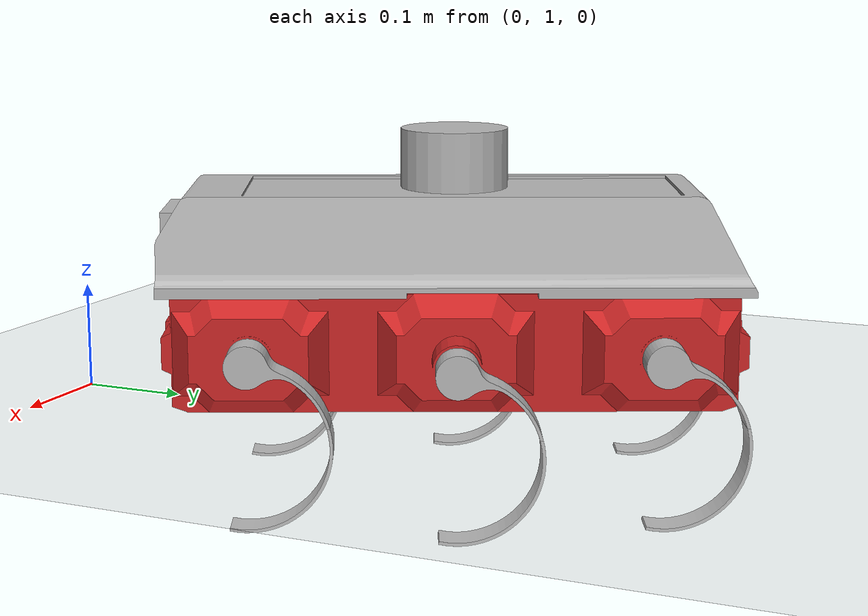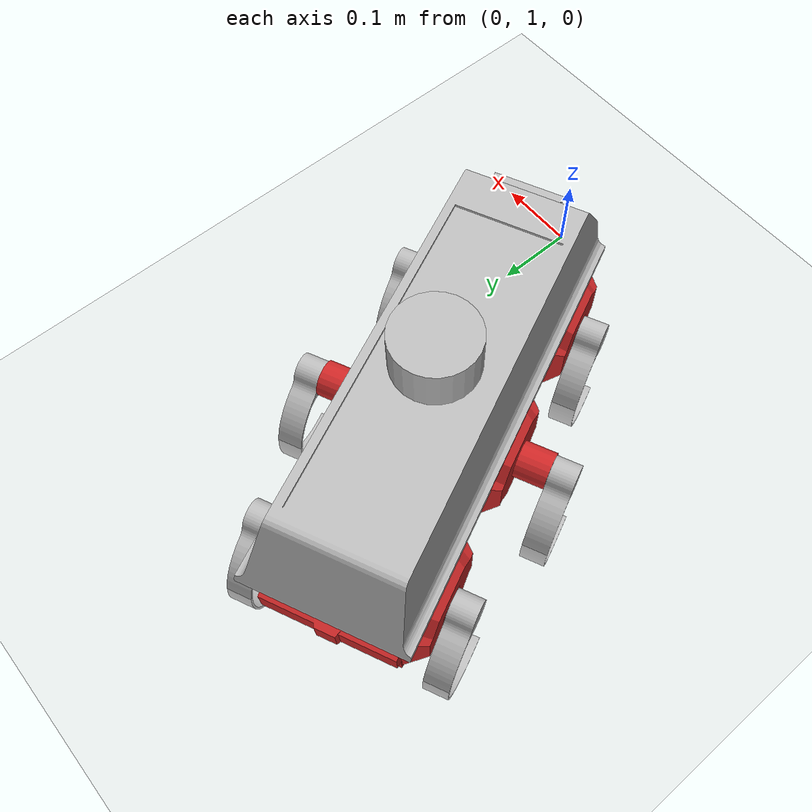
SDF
<sdf version="1.7">
 <world name="default">
  <model name="ground_plane">
   <static>1</static>
   <link name="link">
    <collision name="collision">
     <geometry><plane><normal>0 0 1</normal><size>100 100</size></plane></geometry>
     <surface>
      <contact><collide_bitmask>65535</collide_bitmask></contact>
      <friction><ode><mu>100</mu><mu2>50</mu2></ode></friction>
     </surface>
    </collision>
    <visual name="visual">
     <cast_shadows>0</cast_shadows>
     <geometry><plane><normal>0 0 1</normal><size>100 100</size></plane></geometry>
     <material>
      <script><uri>file://media/materials/scripts/gazebo.material</uri><name>Gazebo/Grey</name></script>
     </material>
    </visual>
   </link>
  </model>
  <model name="rhex">
   <link name="base_link">
    <inertial>
     <pose>0.000443 8e-06 0.00189 0 -0 0</pose>
     <mass>12.646</mass>
     <inertia>
      <ixx>0.0587881</ixx>
      <ixy>-2.79884e-05</ixy>
      <ixz>-0.000629803</ixz>
      <iyy>0.338307</iyy>
      <iyz>-1.20641e-05</iyz>
      <izz>0.36304</izz>
     </inertia>
    </inertial>
    <collision name="base_link_collision">
     <geometry>
      <mesh>
       <scale>1 1 1</scale>
       <uri>file:///home/rhex/mnt/rhex_ws/install/rhex_description/share/rhex_description/meshes/rpk10_chassis.dae</uri>
      </mesh>
     </geometry>
    </collision>
    <collision name="base_link_fixed_joint_lump__upper_case_link_collision_1">
     <pose>0 0 0.055 0 -0 0</pose>
     <geometry>
      <mesh>
       <scale>0.001 0.001 0.001</scale>
       <uri>file:///home/rhex/mnt/rhex_ws/install/rhex_description/share/rhex_description/meshes/upper_case.dae</uri>
      </mesh>
     </geometry>
    </collision>
    <collision name="base_link_fixed_joint_lump__camera_link_collision_2">
     <pose>0.267 0.0055 0.1155 0 -0 0</pose>
     <geometry><box><size>0.015 0.0867 0.022</size></box></geometry>
    </collision>
    <collision name="base_link_fixed_joint_lump__imu_link_collision_3">
     <pose>0.267 -0.005 0.0885 0 -0 0</pose>
     <geometry><box><size>0.015 0.115 0.02</size></box></geometry>
    </collision>
    <collision name="base_link_fixed_joint_lump__lidar_link_collision_4">
     <pose>0 0 0.172 0 -0 0</pose>
     <geometry><cylinder><length>0.056</length><radius>0.0508</radius></cylinder></geometry>
    </collision>
    <visual name="base_link_visual">
     <geometry>
      <mesh>
       <scale>1 1 1</scale>
       <uri>file:///home/rhex/mnt/rhex_ws/install/rhex_description/share/rhex_description/meshes/rpk10_chassis.dae</uri>
      </mesh>
     </geometry>
     <material>
      <script><name>Gazebo/Red</name><uri>file://media/materials/scripts/gazebo.material</uri></script>
     </material>
    </visual>
    <visual name="base_link_fixed_joint_lump__upper_case_link_visual_1">
     <pose>0 0 0.055 0 -0 0</pose>
     <geometry>
      <mesh>
       <scale>0.001 0.001 0.001</scale>
       <uri>file:///home/rhex/mnt/rhex_ws/install/rhex_description/share/rhex_description/meshes/upper_case.dae</uri>
      </mesh>
     </geometry>
    </visual>
    <visual name="base_link_fixed_joint_lump__camera_link_visual_2">
     <pose>0.267 0.0055 0.1155 0 -0 0</pose>
     <geometry><box><size>0.015 0.0867 0.022</size></box></geometry>
    </visual>
    <visual name="base_link_fixed_joint_lump__imu_link_visual_3">
     <pose>0.267 -0.005 0.0885 0 -0 0</pose>
     <geometry><box><size>0.015 0.115 0.02</size></box></geometry>
    </visual>
    <visual name="base_link_fixed_joint_lump__lidar_link_visual_4">
     <pose>0 0 0.172 0 -0 0</pose>
     <geometry><cylinder><length>0.056</length><radius>0.0508</radius></cylinder></geometry>
    </visual>
    <sensor name="depth_camera" type="depth">
     <visualize>1</visualize>
     <update_rate>30</update_rate>
     <camera name="camera">
      <horizontal_fov>1.0472</horizontal_fov>
      <image><width>640</width><height>480</height><format>B8G8R8</format></image>
      <clip><near>0.05</near><far>30</far></clip>
      <noise><type>gaussian</type><mean>0</mean><stddev>0.007</stddev></noise>
     </camera>
     <plugin name="depth_camera_controller" filename="libgazebo_ros_camera.so">
      <update_rate>0.0</update_rate>
      <frame_name>camera_depth_frame</frame_name>
      <min_depth>0.2</min_depth>
      <max_depth>4.0</max_depth>
     </plugin>
     <pose>0.267 0.0055 0.1155 0 -0 0</pose>
    </sensor>
    <sensor name="imu_sensor" type="imu">
     <plugin name="imu_plugin" filename="libgazebo_ros_imu_sensor.so">
      <ros><namespace>/imu</namespace><remapping>~/out:=data</remapping></ros>
      <initial_orientation_as_reference>0</initial_orientation_as_reference>
     </plugin>
     <always_on>1</always_on>
     <update_rate>1000</update_rate>
     <visualize>1</visualize>
     <imu>
      <angular_velocity>
       <x>
        <noise type="gaussian">
         <mean>0</mean>
         <stddev>0.0002</stddev>
         <bias_mean>7.5e-06</bias_mean>
         <bias_stddev>8e-07</bias_stddev>
        </noise>
       </x>
       <y>
        <noise type="gaussian">
         <mean>0</mean>
         <stddev>0.0002</stddev>
         <bias_mean>7.5e-06</bias_mean>
         <bias_stddev>8e-07</bias_stddev>
        </noise>
       </y>
       <z>
        <noise type="gaussian">
         <mean>0</mean>
         <stddev>0.0002</stddev>
         <bias_mean>7.5e-06</bias_mean>
         <bias_stddev>8e-07</bias_stddev>
        </noise>
       </z>
      </angular_velocity>
      <linear_acceleration>
       <x>
        <noise type="gaussian">
         <mean>0</mean>
         <stddev>0.017</stddev>
         <bias_mean>0.1</bias_mean>
         <bias_stddev>0.001</bias_stddev>
        </noise>
       </x>
       <y>
        <noise type="gaussian">
         <mean>0</mean>
         <stddev>0.017</stddev>
         <bias_mean>0.1</bias_mean>
         <bias_stddev>0.001</bias_stddev>
        </noise>
       </y>
       <z>
        <noise type="gaussian">
         <mean>0</mean>
         <stddev>0.017</stddev>
         <bias_mean>0.1</bias_mean>
         <bias_stddev>0.001</bias_stddev>
        </noise>
       </z>
      </linear_acceleration>
     </imu>
     <pose>0.267 -0.005 0.0885 0 -0 0</pose>
    </sensor>
    <sensor name="lidar" type="ray">
     <always_on>1</always_on>
     <visualize>0</visualize>
     <update_rate>5</update_rate>
     <ray>
      <scan>
       <horizontal>
        <samples>360</samples>
        <resolution>1</resolution>
        <min_angle>0</min_angle>
        <max_angle>6.28</max_angle>
       </horizontal>
       <vertical><samples>1</samples><min_angle>0</min_angle><max_angle>0</max_angle></vertical>
      </scan>
      <range><min>0.12</min><max>3.5</max><resolution>0.015</resolution></range>
      <noise><type>gaussian</type><mean>0</mean><stddev>0.01</stddev></noise>
     </ray>
     <plugin name="scan" filename="libgazebo_ros_ray_sensor.so">
      <ros><remapping>~/out:=scan</remapping></ros>
      <output_type>sensor_msgs/LaserScan</output_type>
      <frame_name>lidar_link</frame_name>
     </plugin>
     <pose>0 0 0.172 0 -0 0</pose>
    </sensor>
   </link>
   <joint name="front_left_joint" type="revolute">
    <pose relative_to="base_link">0.19 0.1235 0 0 -0 0</pose>
    <parent>base_link</parent>
    <child>front_left_link</child>
    <axis>
     <xyz>0 1 0</xyz>
     <limit><lower>-1e+16</lower><upper>1e+16</upper></limit>
     <dynamics>
      <damping>0.5</damping>
      <friction>0</friction>
      <spring_reference>0</spring_reference>
      <spring_stiffness>0</spring_stiffness>
     </dynamics>
    </axis>
   </joint>
   <link name="front_left_link">
    <pose relative_to="front_left_joint">0 0 0 0 -0 0</pose>
    <inertial>
     <pose>0 0 -0.08 0 -0 0</pose>
     <mass>0.05</mass>
     <inertia>
      <ixx>0.000130865</ixx>
      <ixy>0</ixy>
      <ixz>0</ixz>
      <iyy>0.000166666</iyy>
      <iyz>0</iyz>
      <izz>4.40694e-05</izz>
     </inertia>
    </inertial>
    <collision name="front_left_link_collision">
     <geometry>
      <mesh>
       <scale>1 1 1</scale>
       <uri>file:///home/rhex/mnt/rhex_ws/install/rhex_description/share/rhex_description/meshes/rpk10_leg.dae</uri>
      </mesh>
     </geometry>
     <surface>
      <contact><ode><kp>1e+12</kp><kd>100</kd><min_depth>0.05</min_depth></ode></contact>
      <friction><ode><mu>50</mu><mu2>50</mu2></ode></friction>
     </surface>
    </collision>
    <visual name="front_left_link_visual">
     <geometry>
      <mesh>
       <scale>1 1 1</scale>
       <uri>file:///home/rhex/mnt/rhex_ws/install/rhex_description/share/rhex_description/meshes/rpk10_leg.dae</uri>
      </mesh>
     </geometry>
    </visual>
   </link>
   <joint name="front_right_joint" type="revolute">
    <pose relative_to="base_link">0.19 -0.1235 0 0 -0 0</pose>
    <parent>base_link</parent>
    <child>front_right_link</child>
    <axis>
     <xyz>0 1 0</xyz>
     <limit><lower>-1e+16</lower><upper>1e+16</upper></limit>
     <dynamics>
      <damping>0.5</damping>
      <friction>0</friction>
      <spring_reference>0</spring_reference>
      <spring_stiffness>0</spring_stiffness>
     </dynamics>
    </axis>
   </joint>
   <link name="front_right_link">
    <pose relative_to="front_right_joint">0 0 0 0 -0 0</pose>
    <inertial>
     <pose>0 0 -0.08 0 -0 0</pose>
     <mass>0.05</mass>
     <inertia>
      <ixx>0.000130865</ixx>
      <ixy>0</ixy>
      <ixz>0</ixz>
      <iyy>0.000166666</iyy>
      <iyz>0</iyz>
      <izz>4.40694e-05</izz>
     </inertia>
    </inertial>
    <collision name="front_right_link_collision">
     <geometry>
      <mesh>
       <scale>1 1 1</scale>
       <uri>file:///home/rhex/mnt/rhex_ws/install/rhex_description/share/rhex_description/meshes/rpk10_leg.dae</uri>
      </mesh>
     </geometry>
     <surface>
      <contact><ode><kp>1e+12</kp><kd>100</kd><min_depth>0.05</min_depth></ode></contact>
      <friction><ode><mu>50</mu><mu2>50</mu2></ode></friction>
     </surface>
    </collision>
    <visual name="front_right_link_visual">
     <geometry>
      <mesh>
       <scale>1 1 1</scale>
       <uri>file:///home/rhex/mnt/rhex_ws/install/rhex_description/share/rhex_description/meshes/rpk10_leg.dae</uri>
      </mesh>
     </geometry>
    </visual>
   </link>
   <joint name="mid_left_joint" type="revolute">
    <pose relative_to="base_link">0 0.162 0 0 -0 0</pose>
    <parent>base_link</parent>
    <child>mid_left_link</child>
    <axis>
     <xyz>0 1 0</xyz>
     <limit><lower>-1e+16</lower><upper>1e+16</upper></limit>
     <dynamics>
      <damping>0.5</damping>
      <friction>0</friction>
      <spring_reference>0</spring_reference>
      <spring_stiffness>0</spring_stiffness>
     </dynamics>
    </axis>
   </joint>
   <link name="mid_left_link">
    <pose relative_to="mid_left_joint">0 0 0 0 -0 0</pose>
    <inertial>
     <pose>0 0 -0.08 0 -0 0</pose>
     <mass>0.05</mass>
     <inertia>
      <ixx>0.000130865</ixx>
      <ixy>0</ixy>
      <ixz>0</ixz>
      <iyy>0.000166666</iyy>
      <iyz>0</iyz>
      <izz>4.40694e-05</izz>
     </inertia>
    </inertial>
    <collision name="mid_left_link_collision">
     <geometry>
      <mesh>
       <scale>1 1 1</scale>
       <uri>file:///home/rhex/mnt/rhex_ws/install/rhex_description/share/rhex_description/meshes/rpk10_leg.dae</uri>
      </mesh>
     </geometry>
     <surface>
      <contact><ode><kp>1e+12</kp><kd>100</kd><min_depth>0.05</min_depth></ode></contact>
      <friction><ode><mu>50</mu><mu2>50</mu2></ode></friction>
     </surface>
    </collision>
    <visual name="mid_left_link_visual">
     <geometry>
      <mesh>
       <scale>1 1 1</scale>
       <uri>file:///home/rhex/mnt/rhex_ws/install/rhex_description/share/rhex_description/meshes/rpk10_leg.dae</uri>
      </mesh>
     </geometry>
    </visual>
   </link>
   <joint name="mid_right_joint" type="revolute">
    <pose relative_to="base_link">0 -0.162 0 0 -0 0</pose>
    <parent>base_link</parent>
    <child>mid_right_link</child>
    <axis>
     <xyz>0 1 0</xyz>
     <limit><lower>-1e+16</lower><upper>1e+16</upper></limit>
     <dynamics>
      <damping>0.5</damping>
      <friction>0</friction>
      <spring_reference>0</spring_reference>
      <spring_stiffness>0</spring_stiffness>
     </dynamics>
    </axis>
   </joint>
   <link name="mid_right_link">
    <pose relative_to="mid_right_joint">0 0 0 0 -0 0</pose>
    <inertial>
     <pose>0 0 -0.08 0 -0 0</pose>
     <mass>0.05</mass>
     <inertia>
      <ixx>0.000130865</ixx>
      <ixy>0</ixy>
      <ixz>0</ixz>
      <iyy>0.000166666</iyy>
      <iyz>0</iyz>
      <izz>4.40694e-05</izz>
     </inertia>
    </inertial>
    <collision name="mid_right_link_collision">
     <geometry>
      <mesh>
       <scale>1 1 1</scale>
       <uri>file:///home/rhex/mnt/rhex_ws/install/rhex_description/share/rhex_description/meshes/rpk10_leg.dae</uri>
      </mesh>
     </geometry>
     <surface>
      <contact><ode><kp>1e+12</kp><kd>100</kd><min_depth>0.05</min_depth></ode></contact>
      <friction><ode><mu>50</mu><mu2>50</mu2></ode></friction>
     </surface>
    </collision>
    <visual name="mid_right_link_visual">
     <geometry>
      <mesh>
       <scale>1 1 1</scale>
       <uri>file:///home/rhex/mnt/rhex_ws/install/rhex_description/share/rhex_description/meshes/rpk10_leg.dae</uri>
      </mesh>
     </geometry>
    </visual>
   </link>
   <joint name="rear_left_joint" type="revolute">
    <pose relative_to="base_link">-0.19 0.1235 0 0 -0 0</pose>
    <parent>base_link</parent>
    <child>rear_left_link</child>
    <axis>
     <xyz>0 1 0</xyz>
     <limit><lower>-1e+16</lower><upper>1e+16</upper></limit>
     <dynamics>
      <damping>0.5</damping>
      <friction>0</friction>
      <spring_reference>0</spring_reference>
      <spring_stiffness>0</spring_stiffness>
     </dynamics>
    </axis>
   </joint>
   <link name="rear_left_link">
    <pose relative_to="rear_left_joint">0 0 0 0 -0 0</pose>
    <inertial>
     <pose>0 0 -0.08 0 -0 0</pose>
     <mass>0.05</mass>
     <inertia>
      <ixx>0.000130865</ixx>
      <ixy>0</ixy>
      <ixz>0</ixz>
      <iyy>0.000166666</iyy>
      <iyz>0</iyz>
      <izz>4.40694e-05</izz>
     </inertia>
    </inertial>
    <collision name="rear_left_link_collision">
     <geometry>
      <mesh>
       <scale>1 1 1</scale>
       <uri>file:///home/rhex/mnt/rhex_ws/install/rhex_description/share/rhex_description/meshes/rpk10_leg.dae</uri>
      </mesh>
     </geometry>
     <surface>
      <contact><ode><kp>1e+12</kp><kd>100</kd><min_depth>0.05</min_depth></ode></contact>
      <friction><ode><mu>50</mu><mu2>50</mu2></ode></friction>
     </surface>
    </collision>
    <visual name="rear_left_link_visual">
     <geometry>
      <mesh>
       <scale>1 1 1</scale>
       <uri>file:///home/rhex/mnt/rhex_ws/install/rhex_description/share/rhex_description/meshes/rpk10_leg.dae</uri>
      </mesh>
     </geometry>
    </visual>
   </link>
   <joint name="rear_right_joint" type="revolute">
    <pose relative_to="base_link">-0.19 -0.1235 0 0 -0 0</pose>
    <parent>base_link</parent>
    <child>rear_right_link</child>
    <axis>
     <xyz>0 1 0</xyz>
     <limit><lower>-1e+16</lower><upper>1e+16</upper></limit>
     <dynamics>
      <damping>0.5</damping>
      <friction>0</friction>
      <spring_reference>0</spring_reference>
      <spring_stiffness>0</spring_stiffness>
     </dynamics>
    </axis>
   </joint>
   <link name="rear_right_link">
    <pose relative_to="rear_right_joint">0 0 0 0 -0 0</pose>
    <inertial>
     <pose>0 0 -0.08 0 -0 0</pose>
     <mass>0.05</mass>
     <inertia>
      <ixx>0.000130865</ixx>
      <ixy>0</ixy>
      <ixz>0</ixz>
      <iyy>0.000166666</iyy>
      <iyz>0</iyz>
      <izz>4.40694e-05</izz>
     </inertia>
    </inertial>
    <collision name="rear_right_link_collision">
     <geometry>
      <mesh>
       <scale>1 1 1</scale>
       <uri>file:///home/rhex/mnt/rhex_ws/install/rhex_description/share/rhex_description/meshes/rpk10_leg.dae</uri>
      </mesh>
     </geometry>
     <surface>
      <contact><ode><kp>1e+12</kp><kd>100</kd><min_depth>0.05</min_depth></ode></contact>
      <friction><ode><mu>50</mu><mu2>50</mu2></ode></friction>
     </surface>
    </collision>
    <visual name="rear_right_link_visual">
     <geometry>
      <mesh>
       <scale>1 1 1</scale>
       <uri>file:///home/rhex/mnt/rhex_ws/install/rhex_description/share/rhex_description/meshes/rpk10_leg.dae</uri>
      </mesh>
     </geometry>
    </visual>
   </link>
   <plugin name="p3d_base_controller" filename="libgazebo_ros_p3d.so">
    <ros><argument>/odom:=odom/robot_pos</argument></ros>
    <body_name>base_link</body_name>
    <frame_name>world</frame_name>
    <update_rate>30.0</update_rate>
    <xyz_offset>0 0 0</xyz_offset>
    <rpy_offset>0 0 0</rpy_offset>
    <gaussian_noise>0.01</gaussian_noise>
   </plugin>
   <static>0</static>
   <plugin name="gazebo_ros2_control" filename="libgazebo_ros2_control.so">
    <parameters>/home/rhex/mnt/rhex_ws/install/rhex_description/share/rhex_description/config/ros_control.yaml</parameters>
   </plugin>
   <pose>-0.126848 1.33451 0.056006 -5e-06 -2.1e-05 -1.13672</pose>
  </model>
 </world>
</sdf>
